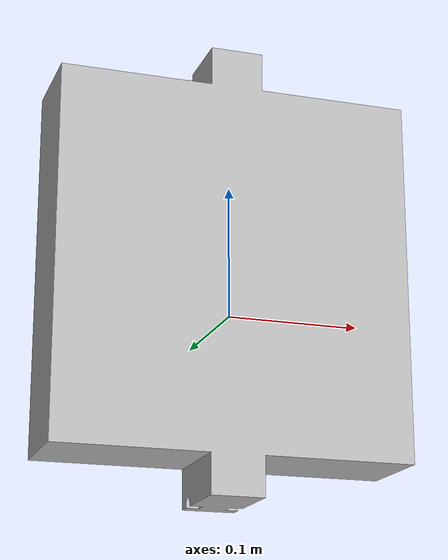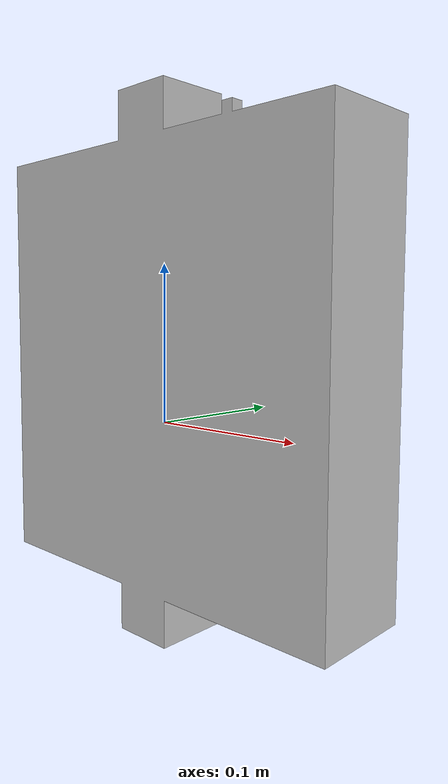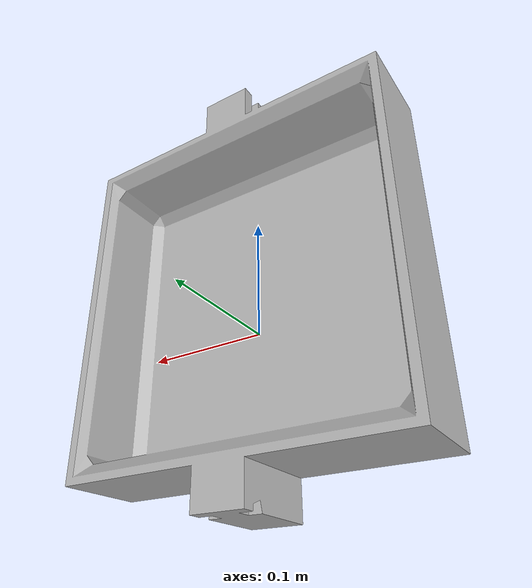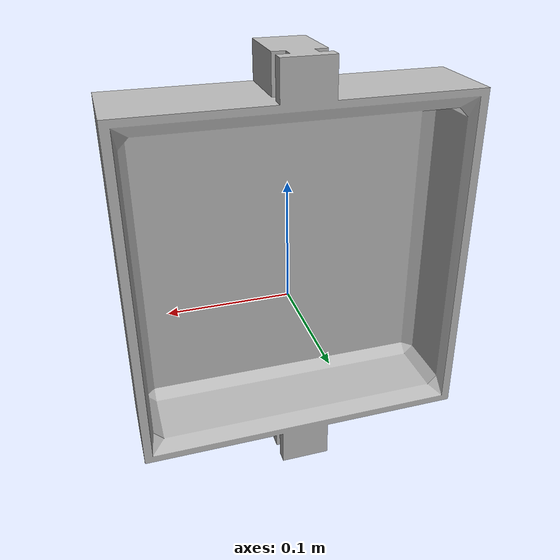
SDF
<?xml version="1.0" ?>
<sdf version="1.6">
  <model name="sink">
    <static>true</static>
    <pose>0 0 0.035 0 0 0</pose>

    <!-- Ground-truth pose publisher: relayed to /tf as odom->sink. -->
    <plugin filename="ignition-gazebo-pose-publisher-system"
            name="ignition::gazebo::systems::PosePublisher">
      <publish_link_pose>false</publish_link_pose>
      <publish_nested_model_pose>false</publish_nested_model_pose>
      <publish_model_pose>true</publish_model_pose>
      <use_pose_vector_msg>true</use_pose_vector_msg>
      <update_rate>20</update_rate>
    </plugin>

    <link name="base_link">
      <inertial>
        <!-- 2.0 kg: heavy enough to need two robots, light enough for the
             two X3Plus grippers to lift together. -->
        <mass>2.0</mass>
        <inertia>
          <ixx>0.008</ixx>
          <iyy>0.025</iyy>
          <izz>0.020</izz>
        </inertia>
      </inertial>

      <collision name="collision">
        <geometry>
          <mesh>
            <uri>model://sim_gazebo_bringup/meshes/sink/sink.obj</uri>
            <scale>1.0 1.0 1.0</scale>
          </mesh>
        </geometry>
        <surface>
          <friction>
            <ode>
              <mu>1.0</mu>
              <mu2>1.0</mu2>
            </ode>
          </friction>
          <contact>
            <ode>
              <kp>100000.0</kp>
              <kd>50.0</kd>
              <max_vel>1.0</max_vel>
              <min_depth>0.001</min_depth>
            </ode>
          </contact>
        </surface>
      </collision>

      <visual name="visual">
        <geometry>
          <mesh>
            <uri>model://sim_gazebo_bringup/meshes/sink/sink.obj</uri>
            <scale>1.0 1.0 1.0</scale>
          </mesh>
        </geometry>
      </visual>
    </link>
  </model>
</sdf>
